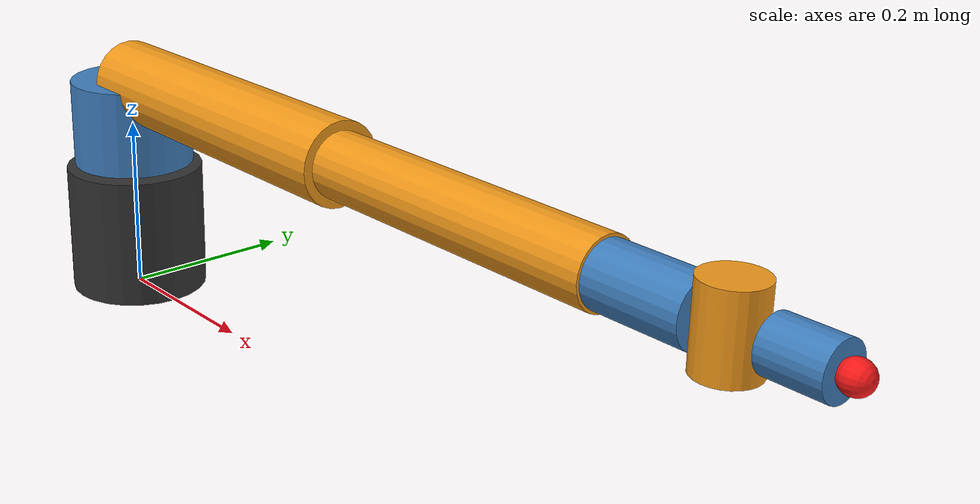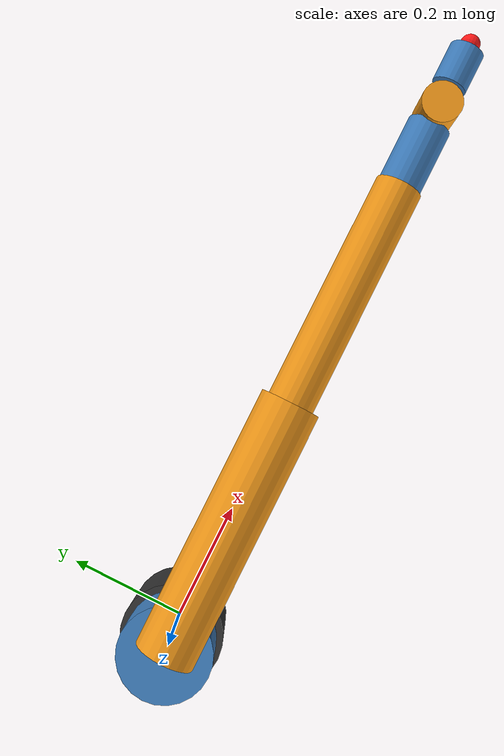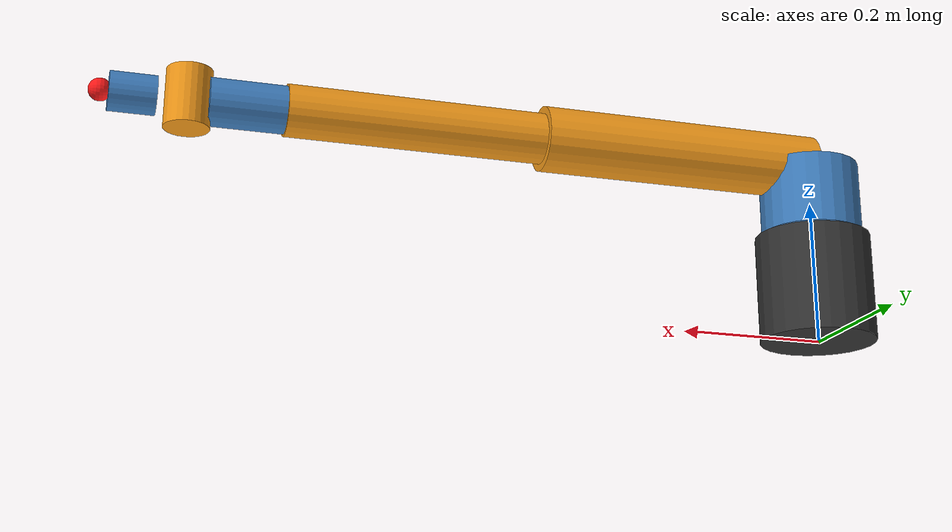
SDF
<?xml version="1.0"?>
shoulder_link
              --shoulder_lift_joint (Y)--> upper_arm_link
              --elbow_joint         (Y)--> forearm_link
              --wrist_1_joint       (Y)--> wrist_1_link
              --wrist_2_joint       (Z)--> wrist_2_link
              --wrist_3_joint       (Y)--> wrist_3_link
              --fixed                  --> tool0  (end-effector frame)

  Control surface (Gazebo side; ros_gz_bridge re-emits as ROS topics):

    cmd  to   /arm/JOINT/cmd_pos        type=gz.msgs.Double   ROS_TO_GZ
    fb   from /joint_states             type=gz.msgs.Model    GZ_TO_ROS
    tf   from /model/agenticros_arm/pose and /pose_static

  Send a single joint angle as ROS std_msgs/Float64 to e.g.
  /arm/shoulder_pan/cmd_pos and the JointPositionController plugin below
  drives the joint to that angle with a PD loop (kp=500, kd=50). The
  arm reaches the target in ~1-2 s and holds against gravity.

  Limits:
    shoulder_pan, elbow, wrist_   : +/-pi   rad
    shoulder_lift                  : +/-pi/2 rad (prevents self-collision)
    velocity                       : 2 rad/s  effort: 30 Nm

  NOTE on physics tuning: link masses are heavier than the real UR5e
  on purpose - higher inertia keeps PD control numerically stable on
  the relatively coarse default gz physics step (1 ms). If you want a
  snappier feel, drop the masses by 50% and bump kp to ~800.
-->
<sdf version="1.9">
  <model name="agenticros_arm">

    <link name="base_link">
      <pose>0 0 0.075 0 0 0</pose>
      <inertial>
        <mass>10.0</mass>
        <inertia>
          <ixx>0.05</ixx><iyy>0.05</iyy><izz>0.05</izz>
          <ixy>0</ixy><ixz>0</ixz><iyz>0</iyz>
        </inertia>
      </inertial>
      <collision name="col">
        <geometry><cylinder><radius>0.08</radius><length>0.15</length></cylinder></geometry>
      </collision>
      <visual name="vis">
        <geometry><cylinder><radius>0.08</radius><length>0.15</length></cylinder></geometry>
        <material>
          <ambient>0.15 0.15 0.15 1</ambient>
          <diffuse>0.20 0.20 0.20 1</diffuse>
        </material>
      </visual>
    </link>

    <joint name="world_joint" type="fixed">
      <parent>world</parent>
      <child>base_link</child>
    </joint>

    <!-- ============================================================
         shoulder_link  (rotated around Z by shoulder_pan_joint)
         ============================================================ -->
    <link name="shoulder_link">
      <pose>0 0 0.205 0 0 0</pose>
      <inertial>
        <mass>3.0</mass>
        <inertia>
          <ixx>0.008</ixx><iyy>0.008</iyy><izz>0.005</izz>
          <ixy>0</ixy><ixz>0</ixz><iyz>0</iyz>
        </inertia>
      </inertial>
      <collision name="col">
        <geometry><cylinder><radius>0.07</radius><length>0.10</length></cylinder></geometry>
      </collision>
      <visual name="vis">
        <geometry><cylinder><radius>0.07</radius><length>0.10</length></cylinder></geometry>
        <material>
          <ambient>0.20 0.45 0.70 1</ambient>
          <diffuse>0.25 0.50 0.75 1</diffuse>
        </material>
      </visual>
    </link>

    <joint name="shoulder_pan_joint" type="revolute">
      <parent>base_link</parent>
      <child>shoulder_link</child>
      <pose>0 0 0.075 0 0 0</pose>
      <axis>
        <xyz>0 0 1</xyz>
        <limit>
          <lower>-3.14159</lower><upper>3.14159</upper>
          <velocity>2.0</velocity><effort>30.0</effort>
        </limit>
        <dynamics><damping>2.0</damping><friction>0.5</friction></dynamics>
      </axis>
    </joint>

    <link name="upper_arm_link">
      <pose>0.20 0 0.255 0 1.5707963 0</pose>
      <inertial>
        <mass>4.0</mass>
        <inertia>
          <ixx>0.02</ixx><iyy>0.06</iyy><izz>0.06</izz>
          <ixy>0</ixy><ixz>0</ixz><iyz>0</iyz>
        </inertia>
      </inertial>
      <collision name="col">
        <geometry><cylinder><radius>0.045</radius><length>0.40</length></cylinder></geometry>
      </collision>
      <visual name="vis">
        <geometry><cylinder><radius>0.045</radius><length>0.40</length></cylinder></geometry>
        <material>
          <ambient>0.85 0.55 0.10 1</ambient>
          <diffuse>0.95 0.60 0.10 1</diffuse>
        </material>
      </visual>
    </link>

    <joint name="shoulder_lift_joint" type="revolute">
      <parent>shoulder_link</parent>
      <child>upper_arm_link</child>
      <pose>0 0 0.05 0 0 0</pose>
      <axis>
        <xyz>0 1 0</xyz>
        <limit>
          <lower>-1.5707</lower><upper>1.5707</upper>
          <velocity>2.0</velocity><effort>30.0</effort>
        </limit>
        <dynamics><damping>2.0</damping><friction>0.5</friction></dynamics>
        <!-- Home: -pi/2 rotates the upper arm UP so gravity loads less.
             Without this the arm spawns horizontal and visibly sags
             before the PD controller catches up. -->
        <initial_position>-1.5707963</initial_position>
      </axis>
    </joint>

    <!-- ============================================================
         forearm_link  (rotated around Y by elbow_joint)
         ============================================================ -->
    <link name="forearm_link">
      <pose>0.575 0 0.255 0 1.5707963 0</pose>
      <inertial>
        <mass>2.5</mass>
        <inertia>
          <ixx>0.012</ixx><iyy>0.04</iyy><izz>0.04</izz>
          <ixy>0</ixy><ixz>0</ixz><iyz>0</iyz>
        </inertia>
      </inertial>
      <collision name="col">
        <geometry><cylinder><radius>0.035</radius><length>0.35</length></cylinder></geometry>
      </collision>
      <visual name="vis">
        <geometry><cylinder><radius>0.035</radius><length>0.35</length></cylinder></geometry>
        <material>
          <ambient>0.85 0.55 0.10 1</ambient>
          <diffuse>0.95 0.60 0.10 1</diffuse>
        </material>
      </visual>
    </link>

    <joint name="elbow_joint" type="revolute">
      <parent>upper_arm_link</parent>
      <child>forearm_link</child>
      <pose>0 0 0.20 0 0 0</pose>
      <axis>
        <xyz>0 1 0</xyz>
        <limit>
          <lower>-3.14159</lower><upper>3.14159</upper>
          <velocity>2.0</velocity><effort>30.0</effort>
        </limit>
        <dynamics><damping>1.5</damping><friction>0.5</friction></dynamics>
        <initial_position>1.5707963</initial_position>
      </axis>
    </joint>

    <!-- ============================================================
         wrist_1_link  (rotated around Y by wrist_1_joint)
         ============================================================ -->
    <link name="wrist_1_link">
      <pose>0.80 0 0.255 0 1.5707963 0</pose>
      <inertial>
        <mass>0.8</mass>
        <inertia>
          <ixx>0.001</ixx><iyy>0.001</iyy><izz>0.001</izz>
          <ixy>0</ixy><ixz>0</ixz><iyz>0</iyz>
        </inertia>
      </inertial>
      <collision name="col">
        <geometry><cylinder><radius>0.032</radius><length>0.10</length></cylinder></geometry>
      </collision>
      <visual name="vis">
        <geometry><cylinder><radius>0.032</radius><length>0.10</length></cylinder></geometry>
        <material>
          <ambient>0.20 0.45 0.70 1</ambient>
          <diffuse>0.25 0.50 0.75 1</diffuse>
        </material>
      </visual>
    </link>

    <joint name="wrist_1_joint" type="revolute">
      <parent>forearm_link</parent>
      <child>wrist_1_link</child>
      <pose>0 0 0.175 0 0 0</pose>
      <axis>
        <xyz>0 1 0</xyz>
        <limit>
          <lower>-3.14159</lower><upper>3.14159</upper>
          <velocity>2.0</velocity><effort>15.0</effort>
        </limit>
        <dynamics><damping>1.0</damping><friction>0.3</friction></dynamics>
      </axis>
    </joint>

    <!-- ============================================================
         wrist_2_link  (rotated around Z by wrist_2_joint)
         ============================================================ -->
    <link name="wrist_2_link">
      <pose>0.875 0 0.255 0 0 0</pose>
      <inertial>
        <mass>0.6</mass>
        <inertia>
          <ixx>0.0008</ixx><iyy>0.0008</iyy><izz>0.0008</izz>
          <ixy>0</ixy><ixz>0</ixz><iyz>0</iyz>
        </inertia>
      </inertial>
      <collision name="col">
        <geometry><cylinder><radius>0.030</radius><length>0.08</length></cylinder></geometry>
      </collision>
      <visual name="vis">
        <geometry><cylinder><radius>0.030</radius><length>0.08</length></cylinder></geometry>
        <material>
          <ambient>0.85 0.55 0.10 1</ambient>
          <diffuse>0.95 0.60 0.10 1</diffuse>
        </material>
      </visual>
    </link>

    <joint name="wrist_2_joint" type="revolute">
      <parent>wrist_1_link</parent>
      <child>wrist_2_link</child>
      <pose>0 0 0.075 0 0 0</pose>
      <axis>
        <xyz>0 0 1</xyz>
        <limit>
          <lower>-3.14159</lower><upper>3.14159</upper>
          <velocity>2.0</velocity><effort>15.0</effort>
        </limit>
        <dynamics><damping>1.0</damping><friction>0.3</friction></dynamics>
      </axis>
    </joint>

    <link name="wrist_3_link">
      <pose>0.945 0 0.255 0 1.5707963 0</pose>
      <inertial>
        <mass>0.4</mass>
        <inertia>
          <ixx>0.0004</ixx><iyy>0.0004</iyy><izz>0.0004</izz>
          <ixy>0</ixy><ixz>0</ixz><iyz>0</iyz>
        </inertia>
      </inertial>
      <collision name="col">
        <geometry><cylinder><radius>0.026</radius><length>0.06</length></cylinder></geometry>
      </collision>
      <visual name="vis">
        <geometry><cylinder><radius>0.026</radius><length>0.06</length></cylinder></geometry>
        <material>
          <ambient>0.20 0.45 0.70 1</ambient>
          <diffuse>0.25 0.50 0.75 1</diffuse>
        </material>
      </visual>
      <!-- Tip marker so users can see "this is where tool0 lives" -->
      <visual name="tool0_tip">
        <pose>0 0 0.04 0 0 0</pose>
        <geometry><sphere><radius>0.015</radius></sphere></geometry>
        <material>
          <ambient>0.9 0.1 0.1 1</ambient>
          <diffuse>1.0 0.1 0.1 1</diffuse>
        </material>
      </visual>
    </link>

    <joint name="wrist_3_joint" type="revolute">
      <parent>wrist_2_link</parent>
      <child>wrist_3_link</child>
      <pose>0 0 0.04 0 0 0</pose>
      <axis>
        <xyz>0 1 0</xyz>
        <limit>
          <lower>-3.14159</lower><upper>3.14159</upper>
          <velocity>2.0</velocity><effort>10.0</effort>
        </limit>
        <dynamics><damping>0.5</damping><friction>0.2</friction></dynamics>
      </axis>
    </joint>

    <!-- ===================== Plugins ===================== -->

    <plugin filename="ignition-gazebo-joint-position-controller-system"
            name="gz::sim::systems::JointPositionController">
      <joint_name>shoulder_pan_joint</joint_name>
      <topic>/arm/shoulder_pan/cmd_pos</topic>
      <p_gain>800</p_gain><d_gain>80</d_gain><i_gain>0</i_gain>
      <cmd_max>100</cmd_max><cmd_min>-100</cmd_min>
    </plugin>
    <plugin filename="ignition-gazebo-joint-position-controller-system"
            name="gz::sim::systems::JointPositionController">
      <joint_name>shoulder_lift_joint</joint_name>
      <topic>/arm/shoulder_lift/cmd_pos</topic>
      <p_gain>1200</p_gain><d_gain>120</d_gain><i_gain>0</i_gain>
      <cmd_max>100</cmd_max><cmd_min>-100</cmd_min>
      <initial_position>-1.5707963</initial_position>
    </plugin>
    <plugin filename="ignition-gazebo-joint-position-controller-system"
            name="gz::sim::systems::JointPositionController">
      <joint_name>elbow_joint</joint_name>
      <topic>/arm/elbow/cmd_pos</topic>
      <p_gain>800</p_gain><d_gain>80</d_gain><i_gain>0</i_gain>
      <cmd_max>80</cmd_max><cmd_min>-80</cmd_min>
      <initial_position>1.5707963</initial_position>
    </plugin>
    <plugin filename="ignition-gazebo-joint-position-controller-system"
            name="gz::sim::systems::JointPositionController">
      <joint_name>wrist_1_joint</joint_name>
      <topic>/arm/wrist_1/cmd_pos</topic>
      <p_gain>400</p_gain><d_gain>40</d_gain><i_gain>0</i_gain>
      <cmd_max>15</cmd_max><cmd_min>-15</cmd_min>
    </plugin>
    <plugin filename="ignition-gazebo-joint-position-controller-system"
            name="gz::sim::systems::JointPositionController">
      <joint_name>wrist_2_joint</joint_name>
      <topic>/arm/wrist_2/cmd_pos</topic>
      <p_gain>300</p_gain><d_gain>30</d_gain><i_gain>0</i_gain>
      <cmd_max>15</cmd_max><cmd_min>-15</cmd_min>
    </plugin>
    <plugin filename="ignition-gazebo-joint-position-controller-system"
            name="gz::sim::systems::JointPositionController">
      <joint_name>wrist_3_joint</joint_name>
      <topic>/arm/wrist_3/cmd_pos</topic>
      <p_gain>200</p_gain><d_gain>20</d_gain><i_gain>0</i_gain>
      <cmd_max>10</cmd_max><cmd_min>-10</cmd_min>
    </plugin>

    <!-- Publishes /joint_states (used by robot_state_publisher + RViz). -->
    <plugin filename="gz-sim-joint-state-publisher-system"
            name="gz::sim::systems::JointStatePublisher">
      <topic>joint_states</topic>
    </plugin>

    <!-- Publishes each link's pose as /tf so RViz can render motion. -->
    <plugin filename="gz-sim-pose-publisher-system"
            name="gz::sim::systems::PosePublisher">
      <publish_link_pose>true</publish_link_pose>
      <publish_sensor_pose>false</publish_sensor_pose>
      <publish_collision_pose>false</publish_collision_pose>
      <publish_visual_pose>false</publish_visual_pose>
      <publish_nested_model_pose>false</publish_nested_model_pose>
      <use_pose_vector_msg>true</use_pose_vector_msg>
      <static_publisher>true</static_publisher>
      <static_update_frequency>1</static_update_frequency>
    </plugin>

  </model>
</sdf>
